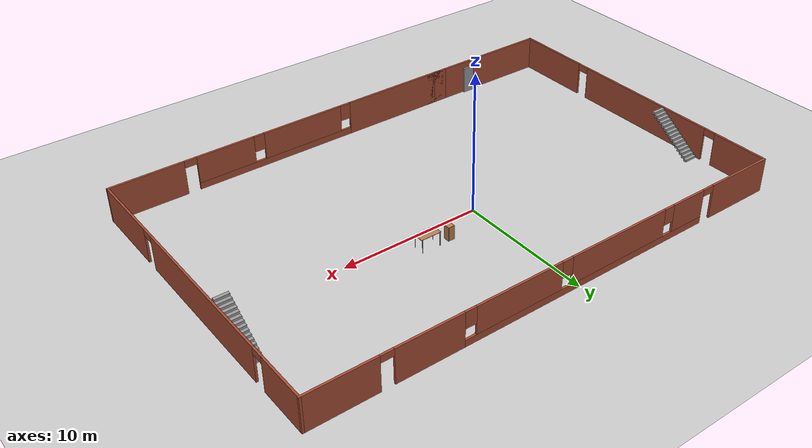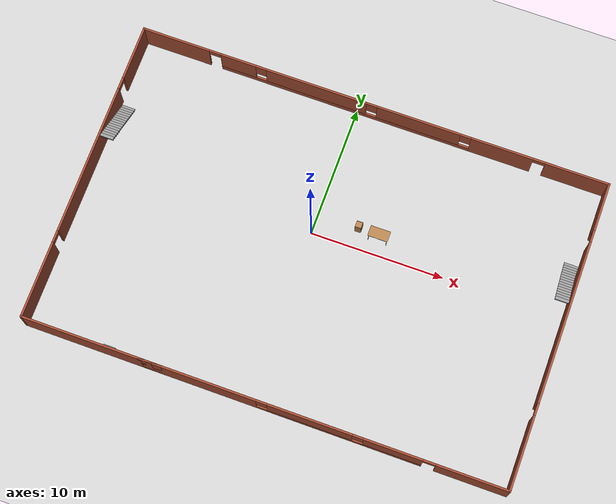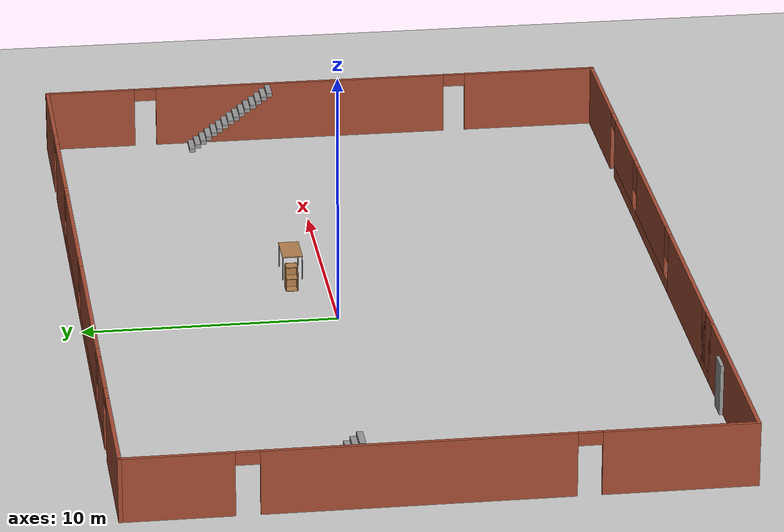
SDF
<sdf version="1.7">
 <world name="default">
  <light name="sun" type="directional">
   <pose>0 0 10 0 -0 0</pose>
   <diffuse>0.8 0.8 0.8 1</diffuse>
   <specular>0.2 0.2 0.2 1</specular>
   <attenuation>
    <range>1000</range>
    <constant>0.9</constant>
    <linear>0.01</linear>
    <quadratic>0.001</quadratic>
   </attenuation>
   <direction>-0.5 0.1 -0.9</direction>
   <spot><inner_angle>0</inner_angle><outer_angle>0</outer_angle><falloff>0</falloff></spot>
  </light>
  <model name="ground_plane">
   <static>1</static>
   <link name="link">
    <collision name="collision">
     <geometry><plane><normal>0 0 1</normal><size>100 100</size></plane></geometry>
     <surface><friction><ode><mu>100</mu><mu2>50</mu2></ode></friction></surface>
    </collision>
    <visual name="visual">
     <cast_shadows>0</cast_shadows>
     <geometry><plane><normal>0 0 1</normal><size>100 100</size></plane></geometry>
     <material>
      <script><uri>file://media/materials/scripts/gazebo.material</uri><name>Gazebo/Grey</name></script>
     </material>
    </visual>
   </link>
  </model>
  <gravity>0 0 -9.8</gravity>
  <magnetic_field>6e-06 2.3e-05 -4.2e-05</magnetic_field>
  <atmosphere type="adiabatic"/>
  <physics type="ode">
   <max_step_size>0.001</max_step_size>
   <real_time_factor>1</real_time_factor>
   <real_time_update_rate>1000</real_time_update_rate>
  </physics>
  <scene><ambient>0.4 0.4 0.4 1</ambient><background>0.7 0.7 0.7 1</background><shadows>1</shadows></scene>
  <spherical_coordinates>
   <surface_model>EARTH_WGS84</surface_model>
   <latitude_deg>0</latitude_deg>
   <longitude_deg>0</longitude_deg>
   <elevation>0</elevation>
   <heading_deg>0</heading_deg>
  </spherical_coordinates>
  <model name="test1">
   <pose>1.17776 -1.65796 0 0 -0 0</pose>
   <link name="Door_0">
    <collision name="Door_0_Collision">
     <geometry><box><size>0.9 0.17 2</size></box></geometry>
     <pose>0 0 1 0 -0 0</pose>
    </collision>
    <visual name="Door_0_Visual">
     <pose>0 0 1 0 -0 0</pose>
     <geometry><box><size>0.9 0.17 2</size></box></geometry>
     <material>
      <script><uri>file://media/materials/scripts/gazebo.material</uri><name>Gazebo/Grey</name></script>
     </material>
    </visual>
    <pose>-11.3262 -11.4203 0 0 -0 0</pose>
   </link>
   <link name="Stairs_1">
    <visual name="Stairs_1_Visual_0">
     <pose>17.1535 5.5921 0.083333 0 -0 0</pose>
     <geometry><box><size>1 0.233333 0.166667</size></box></geometry>
     <material>
      <script><uri>file://media/materials/scripts/gazebo.material</uri><name>Gazebo/Grey</name></script>
      <ambient>1 1 1 1</ambient>
     </material>
     <meta><layer>0</layer></meta>
    </visual>
    <collision name="Stairs_1_Collision_0">
     <geometry><box><size>1 0.233333 0.166667</size></box></geometry>
     <pose>17.1535 5.5921 0.083333 0 -0 0</pose>
    </collision>
    <visual name="Stairs_1_Visual_1">
     <pose>17.1535 5.35877 0.25 0 -0 0</pose>
     <geometry><box><size>1 0.233333 0.166667</size></box></geometry>
     <material>
      <script><uri>file://media/materials/scripts/gazebo.material</uri><name>Gazebo/Grey</name></script>
      <ambient>1 1 1 1</ambient>
     </material>
     <meta><layer>0</layer></meta>
    </visual>
    <collision name="Stairs_1_Collision_1">
     <geometry><box><size>1 0.233333 0.166667</size></box></geometry>
     <pose>17.1535 5.35877 0.25 0 -0 0</pose>
    </collision>
    <visual name="Stairs_1_Visual_2">
     <pose>17.1535 5.12543 0.416667 0 -0 0</pose>
     <geometry><box><size>1 0.233333 0.166667</size></box></geometry>
     <material>
      <script><uri>file://media/materials/scripts/gazebo.material</uri><name>Gazebo/Grey</name></script>
      <ambient>1 1 1 1</ambient>
     </material>
     <meta><layer>0</layer></meta>
    </visual>
    <collision name="Stairs_1_Collision_2">
     <geometry><box><size>1 0.233333 0.166667</size></box></geometry>
     <pose>17.1535 5.12543 0.416667 0 -0 0</pose>
    </collision>
    <visual name="Stairs_1_Visual_3">
     <pose>17.1535 4.8921 0.583333 0 -0 0</pose>
     <geometry><box><size>1 0.233333 0.166667</size></box></geometry>
     <material>
      <script><uri>file://media/materials/scripts/gazebo.material</uri><name>Gazebo/Grey</name></script>
      <ambient>1 1 1 1</ambient>
     </material>
     <meta><layer>0</layer></meta>
    </visual>
    <collision name="Stairs_1_Collision_3">
     <geometry><box><size>1 0.233333 0.166667</size></box></geometry>
     <pose>17.1535 4.8921 0.583333 0 -0 0</pose>
    </collision>
    <visual name="Stairs_1_Visual_4">
     <pose>17.1535 4.65877 0.75 0 -0 0</pose>
     <geometry><box><size>1 0.233333 0.166667</size></box></geometry>
     <material>
      <script><uri>file://media/materials/scripts/gazebo.material</uri><name>Gazebo/Grey</name></script>
      <ambient>1 1 1 1</ambient>
     </material>
     <meta><layer>0</layer></meta>
    </visual>
    <collision name="Stairs_1_Collision_4">
     <geometry><box><size>1 0.233333 0.166667</size></box></geometry>
     <pose>17.1535 4.65877 0.75 0 -0 0</pose>
    </collision>
    <visual name="Stairs_1_Visual_5">
     <pose>17.1535 4.42543 0.916667 0 -0 0</pose>
     <geometry><box><size>1 0.233333 0.166667</size></box></geometry>
     <material>
      <script><uri>file://media/materials/scripts/gazebo.material</uri><name>Gazebo/Grey</name></script>
      <ambient>1 1 1 1</ambient>
     </material>
     <meta><layer>0</layer></meta>
    </visual>
    <collision name="Stairs_1_Collision_5">
     <geometry><box><size>1 0.233333 0.166667</size></box></geometry>
     <pose>17.1535 4.42543 0.916667 0 -0 0</pose>
    </collision>
    <visual name="Stairs_1_Visual_6">
     <pose>17.1535 4.1921 1.08333 0 -0 0</pose>
     <geometry><box><size>1 0.233333 0.166667</size></box></geometry>
     <material>
      <script><uri>file://media/materials/scripts/gazebo.material</uri><name>Gazebo/Grey</name></script>
      <ambient>1 1 1 1</ambient>
     </material>
     <meta><layer>0</layer></meta>
    </visual>
    <collision name="Stairs_1_Collision_6">
     <geometry><box><size>1 0.233333 0.166667</size></box></geometry>
     <pose>17.1535 4.1921 1.08333 0 -0 0</pose>
    </collision>
    <visual name="Stairs_1_Visual_7">
     <pose>17.1535 3.95877 1.25 0 -0 0</pose>
     <geometry><box><size>1 0.233333 0.166667</size></box></geometry>
     <material>
      <script><uri>file://media/materials/scripts/gazebo.material</uri><name>Gazebo/Grey</name></script>
      <ambient>1 1 1 1</ambient>
     </material>
     <meta><layer>0</layer></meta>
    </visual>
    <collision name="Stairs_1_Collision_7">
     <geometry><box><size>1 0.233333 0.166667</size></box></geometry>
     <pose>17.1535 3.95877 1.25 0 -0 0</pose>
    </collision>
    <visual name="Stairs_1_Visual_8">
     <pose>17.1535 3.72543 1.41667 0 -0 0</pose>
     <geometry><box><size>1 0.233333 0.166667</size></box></geometry>
     <material>
      <script><uri>file://media/materials/scripts/gazebo.material</uri><name>Gazebo/Grey</name></script>
      <ambient>1 1 1 1</ambient>
     </material>
     <meta><layer>0</layer></meta>
    </visual>
    <collision name="Stairs_1_Collision_8">
     <geometry><box><size>1 0.233333 0.166667</size></box></geometry>
     <pose>17.1535 3.72543 1.41667 0 -0 0</pose>
    </collision>
    <visual name="Stairs_1_Visual_9">
     <pose>17.1535 3.4921 1.58333 0 -0 0</pose>
     <geometry><box><size>1 0.233333 0.166667</size></box></geometry>
     <material>
      <script><uri>file://media/materials/scripts/gazebo.material</uri><name>Gazebo/Grey</name></script>
      <ambient>1 1 1 1</ambient>
     </material>
     <meta><layer>0</layer></meta>
    </visual>
    <collision name="Stairs_1_Collision_9">
     <geometry><box><size>1 0.233333 0.166667</size></box></geometry>
     <pose>17.1535 3.4921 1.58333 0 -0 0</pose>
    </collision>
    <visual name="Stairs_1_Visual_10">
     <pose>17.1535 3.25877 1.75 0 -0 0</pose>
     <geometry><box><size>1 0.233333 0.166667</size></box></geometry>
     <material>
      <script><uri>file://media/materials/scripts/gazebo.material</uri><name>Gazebo/Grey</name></script>
      <ambient>1 1 1 1</ambient>
     </material>
     <meta><layer>0</layer></meta>
    </visual>
    <collision name="Stairs_1_Collision_10">
     <geometry><box><size>1 0.233333 0.166667</size></box></geometry>
     <pose>17.1535 3.25877 1.75 0 -0 0</pose>
    </collision>
    <visual name="Stairs_1_Visual_11">
     <pose>17.1535 3.02543 1.91667 0 -0 0</pose>
     <geometry><box><size>1 0.233333 0.166667</size></box></geometry>
     <material>
      <script><uri>file://media/materials/scripts/gazebo.material</uri><name>Gazebo/Grey</name></script>
      <ambient>1 1 1 1</ambient>
     </material>
     <meta><layer>0</layer></meta>
    </visual>
    <collision name="Stairs_1_Collision_11">
     <geometry><box><size>1 0.233333 0.166667</size></box></geometry>
     <pose>17.1535 3.02543 1.91667 0 -0 0</pose>
    </collision>
    <visual name="Stairs_1_Visual_12">
     <pose>17.1535 2.7921 2.08333 0 -0 0</pose>
     <geometry><box><size>1 0.233333 0.166667</size></box></geometry>
     <material>
      <script><uri>file://media/materials/scripts/gazebo.material</uri><name>Gazebo/Grey</name></script>
      <ambient>1 1 1 1</ambient>
     </material>
     <meta><layer>0</layer></meta>
    </visual>
    <collision name="Stairs_1_Collision_12">
     <geometry><box><size>1 0.233333 0.166667</size></box></geometry>
     <pose>17.1535 2.7921 2.08333 0 -0 0</pose>
    </collision>
    <visual name="Stairs_1_Visual_13">
     <pose>17.1535 2.55877 2.25 0 -0 0</pose>
     <geometry><box><size>1 0.233333 0.166667</size></box></geometry>
     <material>
      <script><uri>file://media/materials/scripts/gazebo.material</uri><name>Gazebo/Grey</name></script>
      <ambient>1 1 1 1</ambient>
     </material>
     <meta><layer>0</layer></meta>
    </visual>
    <collision name="Stairs_1_Collision_13">
     <geometry><box><size>1 0.233333 0.166667</size></box></geometry>
     <pose>17.1535 2.55877 2.25 0 -0 0</pose>
    </collision>
    <visual name="Stairs_1_Visual_14">
     <pose>17.1535 2.32543 2.41667 0 -0 0</pose>
     <geometry><box><size>1 0.233333 0.166667</size></box></geometry>
     <material>
      <script><uri>file://media/materials/scripts/gazebo.material</uri><name>Gazebo/Grey</name></script>
      <ambient>1 1 1 1</ambient>
     </material>
     <meta><layer>0</layer></meta>
    </visual>
    <collision name="Stairs_1_Collision_14">
     <geometry><box><size>1 0.233333 0.166667</size></box></geometry>
     <pose>17.1535 2.32543 2.41667 0 -0 0</pose>
    </collision>
   </link>
   <link name="Stairs_2">
    <visual name="Stairs_2_Visual_0">
     <pose>-17.1849 6.08032 0.083333 0 -0 0</pose>
     <geometry><box><size>1 0.233333 0.166667</size></box></geometry>
     <material>
      <script><uri>file://media/materials/scripts/gazebo.material</uri><name>Gazebo/Grey</name></script>
      <ambient>1 1 1 1</ambient>
     </material>
     <meta><layer>0</layer></meta>
    </visual>
    <collision name="Stairs_2_Collision_0">
     <geometry><box><size>1 0.233333 0.166667</size></box></geometry>
     <pose>-17.1849 6.08032 0.083333 0 -0 0</pose>
    </collision>
    <visual name="Stairs_2_Visual_1">
     <pose>-17.1849 5.84699 0.25 0 -0 0</pose>
     <geometry><box><size>1 0.233333 0.166667</size></box></geometry>
     <material>
      <script><uri>file://media/materials/scripts/gazebo.material</uri><name>Gazebo/Grey</name></script>
      <ambient>1 1 1 1</ambient>
     </material>
     <meta><layer>0</layer></meta>
    </visual>
    <collision name="Stairs_2_Collision_1">
     <geometry><box><size>1 0.233333 0.166667</size></box></geometry>
     <pose>-17.1849 5.84699 0.25 0 -0 0</pose>
    </collision>
    <visual name="Stairs_2_Visual_2">
     <pose>-17.1849 5.61366 0.416667 0 -0 0</pose>
     <geometry><box><size>1 0.233333 0.166667</size></box></geometry>
     <material>
      <script><uri>file://media/materials/scripts/gazebo.material</uri><name>Gazebo/Grey</name></script>
      <ambient>1 1 1 1</ambient>
     </material>
     <meta><layer>0</layer></meta>
    </visual>
    <collision name="Stairs_2_Collision_2">
     <geometry><box><size>1 0.233333 0.166667</size></box></geometry>
     <pose>-17.1849 5.61366 0.416667 0 -0 0</pose>
    </collision>
    <visual name="Stairs_2_Visual_3">
     <pose>-17.1849 5.38032 0.583333 0 -0 0</pose>
     <geometry><box><size>1 0.233333 0.166667</size></box></geometry>
     <material>
      <script><uri>file://media/materials/scripts/gazebo.material</uri><name>Gazebo/Grey</name></script>
      <ambient>1 1 1 1</ambient>
     </material>
     <meta><layer>0</layer></meta>
    </visual>
    <collision name="Stairs_2_Collision_3">
     <geometry><box><size>1 0.233333 0.166667</size></box></geometry>
     <pose>-17.1849 5.38032 0.583333 0 -0 0</pose>
    </collision>
    <visual name="Stairs_2_Visual_4">
     <pose>-17.1849 5.14699 0.75 0 -0 0</pose>
     <geometry><box><size>1 0.233333 0.166667</size></box></geometry>
     <material>
      <script><uri>file://media/materials/scripts/gazebo.material</uri><name>Gazebo/Grey</name></script>
      <ambient>1 1 1 1</ambient>
     </material>
     <meta><layer>0</layer></meta>
    </visual>
    <collision name="Stairs_2_Collision_4">
     <geometry><box><size>1 0.233333 0.166667</size></box></geometry>
     <pose>-17.1849 5.14699 0.75 0 -0 0</pose>
    </collision>
    <visual name="Stairs_2_Visual_5">
     <pose>-17.1849 4.91366 0.916667 0 -0 0</pose>
     <geometry><box><size>1 0.233333 0.166667</size></box></geometry>
     <material>
      <script><uri>file://media/materials/scripts/gazebo.material</uri><name>Gazebo/Grey</name></script>
      <ambient>1 1 1 1</ambient>
     </material>
     <meta><layer>0</layer></meta>
    </visual>
    <collision name="Stairs_2_Collision_5">
     <geometry><box><size>1 0.233333 0.166667</size></box></geometry>
     <pose>-17.1849 4.91366 0.916667 0 -0 0</pose>
    </collision>
    <visual name="Stairs_2_Visual_6">
     <pose>-17.1849 4.68032 1.08333 0 -0 0</pose>
     <geometry><box><size>1 0.233333 0.166667</size></box></geometry>
     <material>
      <script><uri>file://media/materials/scripts/gazebo.material</uri><name>Gazebo/Grey</name></script>
      <ambient>1 1 1 1</ambient>
     </material>
     <meta><layer>0</layer></meta>
    </visual>
    <collision name="Stairs_2_Collision_6">
     <geometry><box><size>1 0.233333 0.166667</size></box></geometry>
     <pose>-17.1849 4.68032 1.08333 0 -0 0</pose>
    </collision>
    <visual name="Stairs_2_Visual_7">
     <pose>-17.1849 4.44699 1.25 0 -0 0</pose>
     <geometry><box><size>1 0.233333 0.166667</size></box></geometry>
     <material>
      <script><uri>file://media/materials/scripts/gazebo.material</uri><name>Gazebo/Grey</name></script>
      <ambient>1 1 1 1</ambient>
     </material>
     <meta><layer>0</layer></meta>
    </visual>
    <collision name="Stairs_2_Collision_7">
     <geometry><box><size>1 0.233333 0.166667</size></box></geometry>
     <pose>-17.1849 4.44699 1.25 0 -0 0</pose>
    </collision>
    <visual name="Stairs_2_Visual_8">
     <pose>-17.1849 4.21366 1.41667 0 -0 0</pose>
     <geometry><box><size>1 0.233333 0.166667</size></box></geometry>
     <material>
      <script><uri>file://media/materials/scripts/gazebo.material</uri><name>Gazebo/Grey</name></script>
      <ambient>1 1 1 1</ambient>
     </material>
     <meta><layer>0</layer></meta>
    </visual>
    <collision name="Stairs_2_Collision_8">
     <geometry><box><size>1 0.233333 0.166667</size></box></geometry>
     <pose>-17.1849 4.21366 1.41667 0 -0 0</pose>
    </collision>
    <visual name="Stairs_2_Visual_9">
     <pose>-17.1849 3.98032 1.58333 0 -0 0</pose>
     <geometry><box><size>1 0.233333 0.166667</size></box></geometry>
     <material>
      <script><uri>file://media/materials/scripts/gazebo.material</uri><name>Gazebo/Grey</name></script>
      <ambient>1 1 1 1</ambient>
     </material>
     <meta><layer>0</layer></meta>
    </visual>
    <collision name="Stairs_2_Collision_9">
     <geometry><box><size>1 0.233333 0.166667</size></box></geometry>
     <pose>-17.1849 3.98032 1.58333 0 -0 0</pose>
    </collision>
    <visual name="Stairs_2_Visual_10">
     <pose>-17.1849 3.74699 1.75 0 -0 0</pose>
     <geometry><box><size>1 0.233333 0.166667</size></box></geometry>
     <material>
      <script><uri>file://media/materials/scripts/gazebo.material</uri><name>Gazebo/Grey</name></script>
      <ambient>1 1 1 1</ambient>
     </material>
     <meta><layer>0</layer></meta>
    </visual>
    <collision name="Stairs_2_Collision_10">
     <geometry><box><size>1 0.233333 0.166667</size></box></geometry>
     <pose>-17.1849 3.74699 1.75 0 -0 0</pose>
    </collision>
    <visual name="Stairs_2_Visual_11">
     <pose>-17.1849 3.51366 1.91667 0 -0 0</pose>
     <geometry><box><size>1 0.233333 0.166667</size></box></geometry>
     <material>
      <script><uri>file://media/materials/scripts/gazebo.material</uri><name>Gazebo/Grey</name></script>
      <ambient>1 1 1 1</ambient>
     </material>
     <meta><layer>0</layer></meta>
    </visual>
    <collision name="Stairs_2_Collision_11">
     <geometry><box><size>1 0.233333 0.166667</size></box></geometry>
     <pose>-17.1849 3.51366 1.91667 0 -0 0</pose>
    </collision>
    <visual name="Stairs_2_Visual_12">
     <pose>-17.1849 3.28032 2.08333 0 -0 0</pose>
     <geometry><box><size>1 0.233333 0.166667</size></box></geometry>
     <material>
      <script><uri>file://media/materials/scripts/gazebo.material</uri><name>Gazebo/Grey</name></script>
      <ambient>1 1 1 1</ambient>
     </material>
     <meta><layer>0</layer></meta>
    </visual>
    <collision name="Stairs_2_Collision_12">
     <geometry><box><size>1 0.233333 0.166667</size></box></geometry>
     <pose>-17.1849 3.28032 2.08333 0 -0 0</pose>
    </collision>
    <visual name="Stairs_2_Visual_13">
     <pose>-17.1849 3.04699 2.25 0 -0 0</pose>
     <geometry><box><size>1 0.233333 0.166667</size></box></geometry>
     <material>
      <script><uri>file://media/materials/scripts/gazebo.material</uri><name>Gazebo/Grey</name></script>
      <ambient>1 1 1 1</ambient>
     </material>
     <meta><layer>0</layer></meta>
    </visual>
    <collision name="Stairs_2_Collision_13">
     <geometry><box><size>1 0.233333 0.166667</size></box></geometry>
     <pose>-17.1849 3.04699 2.25 0 -0 0</pose>
    </collision>
    <visual name="Stairs_2_Visual_14">
     <pose>-17.1849 2.81366 2.41667 0 -0 0</pose>
     <geometry><box><size>1 0.233333 0.166667</size></box></geometry>
     <material>
      <script><uri>file://media/materials/scripts/gazebo.material</uri><name>Gazebo/Grey</name></script>
      <ambient>1 1 1 1</ambient>
     </material>
     <meta><layer>0</layer></meta>
    </visual>
    <collision name="Stairs_2_Collision_14">
     <geometry><box><size>1 0.233333 0.166667</size></box></geometry>
     <pose>-17.1849 2.81366 2.41667 0 -0 0</pose>
    </collision>
   </link>
   <link name="Wall_1">
    <pose>4.37794 -11.55 0 0 -0 0</pose>
    <visual name="Wall_1_Visual_0">
     <pose>-9.14683 0 1.25 0 -0 0</pose>
     <geometry><box><size>8.70634 0.15 2.5</size></box></geometry>
     <material>
      <script><uri>file://media/materials/scripts/gazebo.material</uri><name>Gazebo/Bricks</name></script>
      <ambient>1 1 1 1</ambient>
     </material>
     <meta><layer>0</layer></meta>
    </visual>
    <collision name="Wall_1_Collision_0">
     <geometry><box><size>8.70634 0.15 2.5</size></box></geometry>
     <pose>-9.14683 0 1.25 0 -0 0</pose>
    </collision>
    <visual name="Wall_1_Visual_1">
     <pose>10.8403 0 1.25 0 -0 0</pose>
     <geometry><box><size>5.31944 0.15 2.5</size></box></geometry>
     <material>
      <script><uri>file://media/materials/scripts/gazebo.material</uri><name>Gazebo/Bricks</name></script>
      <ambient>1 1 1 1</ambient>
     </material>
     <meta><layer>0</layer></meta>
    </visual>
    <collision name="Wall_1_Collision_1">
     <geometry><box><size>5.31944 0.15 2.5</size></box></geometry>
     <pose>10.8403 0 1.25 0 -0 0</pose>
    </collision>
    <visual name="Wall_1_Visual_2">
     <pose>1.24345 0 0.25 0 -0 0</pose>
     <geometry><box><size>12.0742 0.15 0.5</size></box></geometry>
     <material>
      <script><uri>file://media/materials/scripts/gazebo.material</uri><name>Gazebo/Bricks</name></script>
      <ambient>1 1 1 1</ambient>
     </material>
     <meta><layer>0</layer></meta>
    </visual>
    <collision name="Wall_1_Collision_2">
     <geometry><box><size>12.0742 0.15 0.5</size></box></geometry>
     <pose>1.24345 0 0.25 0 -0 0</pose>
    </collision>
    <visual name="Wall_1_Visual_3">
     <pose>-0.894723 0 1.5 0 -0 0</pose>
     <geometry><box><size>6.19787 0.15 2</size></box></geometry>
     <material>
      <script><uri>file://media/materials/scripts/gazebo.material</uri><name>Gazebo/Bricks</name></script>
      <ambient>1 1 1 1</ambient>
     </material>
     <meta><layer>0</layer></meta>
    </visual>
    <collision name="Wall_1_Collision_3">
     <geometry><box><size>6.19787 0.15 2</size></box></geometry>
     <pose>-0.894723 0 1.5 0 -0 0</pose>
    </collision>
    <visual name="Wall_1_Visual_4">
     <pose>5.14239 0 1.5 0 -0 0</pose>
     <geometry><box><size>4.27635 0.15 2</size></box></geometry>
     <material>
      <script><uri>file://media/materials/scripts/gazebo.material</uri><name>Gazebo/Bricks</name></script>
      <ambient>1 1 1 1</ambient>
     </material>
     <meta><layer>0</layer></meta>
    </visual>
    <collision name="Wall_1_Collision_4">
     <geometry><box><size>4.27635 0.15 2</size></box></geometry>
     <pose>5.14239 0 1.5 0 -0 0</pose>
    </collision>
    <visual name="Wall_1_Visual_5">
     <pose>-4.39366 0 1.9 0 -0 0</pose>
     <geometry><box><size>0.8 0.15 1.2</size></box></geometry>
     <material>
      <script><uri>file://media/materials/scripts/gazebo.material</uri><name>Gazebo/Bricks</name></script>
      <ambient>1 1 1 1</ambient>
     </material>
     <meta><layer>0</layer></meta>
    </visual>
    <collision name="Wall_1_Collision_5">
     <geometry><box><size>0.8 0.15 1.2</size></box></geometry>
     <pose>-4.39366 0 1.9 0 -0 0</pose>
    </collision>
    <visual name="Wall_1_Visual_6">
     <pose>2.60421 0 1.9 0 -0 0</pose>
     <geometry><box><size>0.8 0.15 1.2</size></box></geometry>
     <material>
      <script><uri>file://media/materials/scripts/gazebo.material</uri><name>Gazebo/Bricks</name></script>
      <ambient>1 1 1 1</ambient>
     </material>
     <meta><layer>0</layer></meta>
    </visual>
    <collision name="Wall_1_Collision_6">
     <geometry><box><size>0.8 0.15 1.2</size></box></geometry>
     <pose>2.60421 0 1.9 0 -0 0</pose>
    </collision>
    <visual name="Wall_1_Visual_7">
     <pose>7.73056 0 2.25 0 -0 0</pose>
     <geometry><box><size>0.9 0.15 0.5</size></box></geometry>
     <material>
      <script><uri>file://media/materials/scripts/gazebo.material</uri><name>Gazebo/Bricks</name></script>
      <ambient>1 1 1 1</ambient>
     </material>
     <meta><layer>0</layer></meta>
    </visual>
    <collision name="Wall_1_Collision_7">
     <geometry><box><size>0.9 0.15 0.5</size></box></geometry>
     <pose>7.73056 0 2.25 0 -0 0</pose>
    </collision>
   </link>
   <link name="Wall_11">
    <pose>-17.8029 -0 0 0 -0 -1.5708</pose>
    <visual name="Wall_11_Visual_0">
     <pose>-9.52224 0 1.25 0 -0 0</pose>
     <geometry><box><size>4.20552 0.15 2.5</size></box></geometry>
     <material>
      <script><uri>file://media/materials/scripts/gazebo.material</uri><name>Gazebo/Bricks</name></script>
      <ambient>1 1 1 1</ambient>
     </material>
     <meta><layer>0</layer></meta>
    </visual>
    <collision name="Wall_11_Collision_0">
     <geometry><box><size>4.20552 0.15 2.5</size></box></geometry>
     <pose>-9.52224 0 1.25 0 -0 0</pose>
    </collision>
    <visual name="Wall_11_Visual_1">
     <pose>-0.785312 0 1.25 0 -0 0</pose>
     <geometry><box><size>11.4683 0.15 2.5</size></box></geometry>
     <material>
      <script><uri>file://media/materials/scripts/gazebo.material</uri><name>Gazebo/Bricks</name></script>
      <ambient>1 1 1 1</ambient>
     </material>
     <meta><layer>0</layer></meta>
    </visual>
    <collision name="Wall_11_Collision_1">
     <geometry><box><size>11.4683 0.15 2.5</size></box></geometry>
     <pose>-0.785312 0 1.25 0 -0 0</pose>
    </collision>
    <visual name="Wall_11_Visual_2">
     <pose>8.73693 0 1.25 0 -0 0</pose>
     <geometry><box><size>5.77614 0.15 2.5</size></box></geometry>
     <material>
      <script><uri>file://media/materials/scripts/gazebo.material</uri><name>Gazebo/Bricks</name></script>
      <ambient>1 1 1 1</ambient>
     </material>
     <meta><layer>0</layer></meta>
    </visual>
    <collision name="Wall_11_Collision_2">
     <geometry><box><size>5.77614 0.15 2.5</size></box></geometry>
     <pose>8.73693 0 1.25 0 -0 0</pose>
    </collision>
    <visual name="Wall_11_Visual_3">
     <pose>-6.96948 0 2.25 0 -0 0</pose>
     <geometry><box><size>0.9 0.15 0.5</size></box></geometry>
     <material>
      <script><uri>file://media/materials/scripts/gazebo.material</uri><name>Gazebo/Bricks</name></script>
      <ambient>1 1 1 1</ambient>
     </material>
     <meta><layer>0</layer></meta>
    </visual>
    <collision name="Wall_11_Collision_3">
     <geometry><box><size>0.9 0.15 0.5</size></box></geometry>
     <pose>-6.96948 0 2.25 0 -0 0</pose>
    </collision>
    <visual name="Wall_11_Visual_4">
     <pose>5.39886 0 2.25 0 -0 0</pose>
     <geometry><box><size>0.9 0.15 0.5</size></box></geometry>
     <material>
      <script><uri>file://media/materials/scripts/gazebo.material</uri><name>Gazebo/Bricks</name></script>
      <ambient>1 1 1 1</ambient>
     </material>
     <meta><layer>0</layer></meta>
    </visual>
    <collision name="Wall_11_Collision_4">
     <geometry><box><size>0.9 0.15 0.5</size></box></geometry>
     <pose>5.39886 0 2.25 0 -0 0</pose>
    </collision>
   </link>
   <link name="Wall_12">
    <pose>-12.6279 -11.55 0 0 -0 0</pose>
    <visual name="Wall_12_Visual_0">
     <pose>-0.750158 0 1.25 0 -0 0</pose>
     <geometry><box><size>8.99968 0.15 2.5</size></box></geometry>
     <material>
      <script><uri>file://media/materials/scripts/gazebo.material</uri><name>Gazebo/Bricks</name></script>
      <ambient>1 1 1 1</ambient>
     </material>
     <meta><layer>0</layer></meta>
    </visual>
    <collision name="Wall_12_Collision_0">
     <geometry><box><size>8.99968 0.15 2.5</size></box></geometry>
     <pose>-0.750158 0 1.25 0 -0 0</pose>
    </collision>
    <visual name="Wall_12_Visual_1">
     <pose>4.49984 0 0.25 0 -0 0</pose>
     <geometry><box><size>1.50032 0.15 0.5</size></box></geometry>
     <material>
      <script><uri>file://media/materials/scripts/gazebo.material</uri><name>Gazebo/Bricks</name></script>
      <ambient>1 1 1 1</ambient>
     </material>
     <meta><layer>0</layer></meta>
    </visual>
    <collision name="Wall_12_Collision_1">
     <geometry><box><size>1.50032 0.15 0.5</size></box></geometry>
     <pose>4.49984 0 0.25 0 -0 0</pose>
    </collision>
    <visual name="Wall_12_Visual_2">
     <pose>4.89984 0 1.5 0 -0 0</pose>
     <geometry><box><size>0.700315 0.15 2</size></box></geometry>
     <material>
      <script><uri>file://media/materials/scripts/gazebo.material</uri><name>Gazebo/Bricks</name></script>
      <ambient>1 1 1 1</ambient>
     </material>
     <meta><layer>0</layer></meta>
    </visual>
    <collision name="Wall_12_Collision_2">
     <geometry><box><size>0.700315 0.15 2</size></box></geometry>
     <pose>4.89984 0 1.5 0 -0 0</pose>
    </collision>
    <visual name="Wall_12_Visual_3">
     <pose>4.14968 0 1.9 0 -0 0</pose>
     <geometry><box><size>0.8 0.15 1.2</size></box></geometry>
     <material>
      <script><uri>file://media/materials/scripts/gazebo.material</uri><name>Gazebo/Bricks</name></script>
      <ambient>1 1 1 1</ambient>
     </material>
     <meta><layer>0</layer></meta>
    </visual>
    <collision name="Wall_12_Collision_3">
     <geometry><box><size>0.8 0.15 1.2</size></box></geometry>
     <pose>4.14968 0 1.9 0 -0 0</pose>
    </collision>
   </link>
   <link name="Wall_2">
    <pose>17.8029 -0 0 0 -0 1.5708</pose>
    <visual name="Wall_2_Visual_0">
     <pose>-8.85898 0 1.25 0 -0 0</pose>
     <geometry><box><size>5.53203 0.15 2.5</size></box></geometry>
     <material>
      <script><uri>file://media/materials/scripts/gazebo.material</uri><name>Gazebo/Bricks</name></script>
      <ambient>1 1 1 1</ambient>
     </material>
     <meta><layer>0</layer></meta>
    </visual>
    <collision name="Wall_2_Collision_0">
     <geometry><box><size>5.53203 0.15 2.5</size></box></geometry>
     <pose>-8.85898 0 1.25 0 -0 0</pose>
    </collision>
    <visual name="Wall_2_Visual_1">
     <pose>0.907368 0 1.25 0 -0 0</pose>
     <geometry><box><size>12.2007 0.15 2.5</size></box></geometry>
     <material>
      <script><uri>file://media/materials/scripts/gazebo.material</uri><name>Gazebo/Bricks</name></script>
      <ambient>1 1 1 1</ambient>
     </material>
     <meta><layer>0</layer></meta>
    </visual>
    <collision name="Wall_2_Collision_1">
     <geometry><box><size>12.2007 0.15 2.5</size></box></geometry>
     <pose>0.907368 0 1.25 0 -0 0</pose>
    </collision>
    <visual name="Wall_2_Visual_2">
     <pose>9.76635 0 1.25 0 -0 0</pose>
     <geometry><box><size>3.7173 0.15 2.5</size></box></geometry>
     <material>
      <script><uri>file://media/materials/scripts/gazebo.material</uri><name>Gazebo/Bricks</name></script>
      <ambient>1 1 1 1</ambient>
     </material>
     <meta><layer>0</layer></meta>
    </visual>
    <collision name="Wall_2_Collision_2">
     <geometry><box><size>3.7173 0.15 2.5</size></box></geometry>
     <pose>9.76635 0 1.25 0 -0 0</pose>
    </collision>
    <visual name="Wall_2_Visual_3">
     <pose>-5.64297 0 2.25 0 -0 0</pose>
     <geometry><box><size>0.9 0.15 0.5</size></box></geometry>
     <material>
      <script><uri>file://media/materials/scripts/gazebo.material</uri><name>Gazebo/Bricks</name></script>
      <ambient>1 1 1 1</ambient>
     </material>
     <meta><layer>0</layer></meta>
    </visual>
    <collision name="Wall_2_Collision_3">
     <geometry><box><size>0.9 0.15 0.5</size></box></geometry>
     <pose>-5.64297 0 2.25 0 -0 0</pose>
    </collision>
    <visual name="Wall_2_Visual_4">
     <pose>7.4577 0 2.25 0 -0 0</pose>
     <geometry><box><size>0.9 0.15 0.5</size></box></geometry>
     <material>
      <script><uri>file://media/materials/scripts/gazebo.material</uri><name>Gazebo/Bricks</name></script>
      <ambient>1 1 1 1</ambient>
     </material>
     <meta><layer>0</layer></meta>
    </visual>
    <collision name="Wall_2_Collision_4">
     <geometry><box><size>0.9 0.15 0.5</size></box></geometry>
     <pose>7.4577 0 2.25 0 -0 0</pose>
    </collision>
   </link>
   <link name="Wall_7">
    <pose>-1e-06 11.55 0 0 -0 3.14159</pose>
    <visual name="Wall_7_Visual_0">
     <pose>-15.4623 0 1.25 0 -0 0</pose>
     <geometry><box><size>4.83121 0.15 2.5</size></box></geometry>
     <material>
      <script><uri>file://media/materials/scripts/gazebo.material</uri><name>Gazebo/Bricks</name></script>
      <ambient>1 1 1 1</ambient>
     </material>
     <meta><layer>0</layer></meta>
    </visual>
    <collision name="Wall_7_Collision_0">
     <geometry><box><size>4.83121 0.15 2.5</size></box></geometry>
     <pose>-15.4623 0 1.25 0 -0 0</pose>
    </collision>
    <visual name="Wall_7_Visual_1">
     <pose>-9.80513 0 1.25 0 -0 0</pose>
     <geometry><box><size>4.6832 0.15 2.5</size></box></geometry>
     <material>
      <script><uri>file://media/materials/scripts/gazebo.material</uri><name>Gazebo/Bricks</name></script>
      <ambient>1 1 1 1</ambient>
     </material>
     <meta><layer>0</layer></meta>
    </visual>
    <collision name="Wall_7_Collision_1">
     <geometry><box><size>4.6832 0.15 2.5</size></box></geometry>
     <pose>-9.80513 0 1.25 0 -0 0</pose>
    </collision>
    <visual name="Wall_7_Visual_2">
     <pose>15.2746 0 1.25 0 -0 0</pose>
     <geometry><box><size>5.20664 0.15 2.5</size></box></geometry>
     <material>
      <script><uri>file://media/materials/scripts/gazebo.material</uri><name>Gazebo/Bricks</name></script>
      <ambient>1 1 1 1</ambient>
     </material>
     <meta><layer>0</layer></meta>
    </visual>
    <collision name="Wall_7_Collision_2">
     <geometry><box><size>5.20664 0.15 2.5</size></box></geometry>
     <pose>15.2746 0 1.25 0 -0 0</pose>
    </collision>
    <visual name="Wall_7_Visual_3">
     <pose>2.15389 0 0.25 0 -0 0</pose>
     <geometry><box><size>19.2348 0.15 0.5</size></box></geometry>
     <material>
      <script><uri>file://media/materials/scripts/gazebo.material</uri><name>Gazebo/Bricks</name></script>
      <ambient>1 1 1 1</ambient>
     </material>
     <meta><layer>0</layer></meta>
    </visual>
    <collision name="Wall_7_Collision_3">
     <geometry><box><size>19.2348 0.15 0.5</size></box></geometry>
     <pose>2.15389 0 0.25 0 -0 0</pose>
    </collision>
    <visual name="Wall_7_Visual_4">
     <pose>-3.48322 0 1.5 0 -0 0</pose>
     <geometry><box><size>6.36061 0.15 2</size></box></geometry>
     <material>
      <script><uri>file://media/materials/scripts/gazebo.material</uri><name>Gazebo/Bricks</name></script>
      <ambient>1 1 1 1</ambient>
     </material>
     <meta><layer>0</layer></meta>
    </visual>
    <collision name="Wall_7_Collision_4">
     <geometry><box><size>6.36061 0.15 2</size></box></geometry>
     <pose>-3.48322 0 1.5 0 -0 0</pose>
    </collision>
    <visual name="Wall_7_Visual_5">
     <pose>4.36904 0 1.5 0 -0 0</pose>
     <geometry><box><size>7.74392 0.15 2</size></box></geometry>
     <material>
      <script><uri>file://media/materials/scripts/gazebo.material</uri><name>Gazebo/Bricks</name></script>
      <ambient>1 1 1 1</ambient>
     </material>
     <meta><layer>0</layer></meta>
    </visual>
    <collision name="Wall_7_Collision_5">
     <geometry><box><size>7.74392 0.15 2</size></box></geometry>
     <pose>4.36904 0 1.5 0 -0 0</pose>
    </collision>
    <visual name="Wall_7_Visual_6">
     <pose>10.4062 0 1.5 0 -0 0</pose>
     <geometry><box><size>2.73031 0.15 2</size></box></geometry>
     <material>
      <script><uri>file://media/materials/scripts/gazebo.material</uri><name>Gazebo/Bricks</name></script>
      <ambient>1 1 1 1</ambient>
     </material>
     <meta><layer>0</layer></meta>
    </visual>
    <collision name="Wall_7_Collision_6">
     <geometry><box><size>2.73031 0.15 2</size></box></geometry>
     <pose>10.4062 0 1.5 0 -0 0</pose>
    </collision>
    <visual name="Wall_7_Visual_7">
     <pose>-7.06353 0 1.9 0 -0 0</pose>
     <geometry><box><size>0.8 0.15 1.2</size></box></geometry>
     <material>
      <script><uri>file://media/materials/scripts/gazebo.material</uri><name>Gazebo/Bricks</name></script>
      <ambient>1 1 1 1</ambient>
     </material>
     <meta><layer>0</layer></meta>
    </visual>
    <collision name="Wall_7_Collision_7">
     <geometry><box><size>0.8 0.15 1.2</size></box></geometry>
     <pose>-7.06353 0 1.9 0 -0 0</pose>
    </collision>
    <visual name="Wall_7_Visual_8">
     <pose>0.097086 0 1.9 0 -0 0</pose>
     <geometry><box><size>0.8 0.15 1.2</size></box></geometry>
     <material>
      <script><uri>file://media/materials/scripts/gazebo.material</uri><name>Gazebo/Bricks</name></script>
      <ambient>1 1 1 1</ambient>
     </material>
     <meta><layer>0</layer></meta>
    </visual>
    <collision name="Wall_7_Collision_8">
     <geometry><box><size>0.8 0.15 1.2</size></box></geometry>
     <pose>0.097086 0 1.9 0 -0 0</pose>
    </collision>
    <visual name="Wall_7_Visual_9">
     <pose>8.641 0 1.9 0 -0 0</pose>
     <geometry><box><size>0.8 0.15 1.2</size></box></geometry>
     <material>
      <script><uri>file://media/materials/scripts/gazebo.material</uri><name>Gazebo/Bricks</name></script>
      <ambient>1 1 1 1</ambient>
     </material>
     <meta><layer>0</layer></meta>
    </visual>
    <collision name="Wall_7_Collision_9">
     <geometry><box><size>0.8 0.15 1.2</size></box></geometry>
     <pose>8.641 0 1.9 0 -0 0</pose>
    </collision>
    <visual name="Wall_7_Visual_10">
     <pose>-12.5967 0 2.25 0 -0 0</pose>
     <geometry><box><size>0.9 0.15 0.5</size></box></geometry>
     <material>
      <script><uri>file://media/materials/scripts/gazebo.material</uri><name>Gazebo/Bricks</name></script>
      <ambient>1 1 1 1</ambient>
     </material>
     <meta><layer>0</layer></meta>
    </visual>
    <collision name="Wall_7_Collision_10">
     <geometry><box><size>0.9 0.15 0.5</size></box></geometry>
     <pose>-12.5967 0 2.25 0 -0 0</pose>
    </collision>
    <visual name="Wall_7_Visual_11">
     <pose>12.2213 0 2.25 0 -0 0</pose>
     <geometry><box><size>0.9 0.15 0.5</size></box></geometry>
     <material>
      <script><uri>file://media/materials/scripts/gazebo.material</uri><name>Gazebo/Bricks</name></script>
      <ambient>1 1 1 1</ambient>
     </material>
     <meta><layer>0</layer></meta>
    </visual>
    <collision name="Wall_7_Collision_11">
     <geometry><box><size>0.9 0.15 0.5</size></box></geometry>
     <pose>12.2213 0 2.25 0 -0 0</pose>
    </collision>
   </link>
   <static>1</static>
  </model>
  <model name="table">
   <static>1</static>
   <link name="link">
    <collision name="surface">
     <pose>0 0 1 0 -0 0</pose>
     <geometry><box><size>1.5 0.8 0.03</size></box></geometry>
     <surface><friction><ode><mu>0.6</mu><mu2>0.6</mu2></ode></friction></surface>
    </collision>
    <visual name="visual1">
     <pose>0 0 1 0 -0 0</pose>
     <geometry><box><size>1.5 0.8 0.03</size></box></geometry>
     <material>
      <script><uri>file://media/materials/scripts/gazebo.material</uri><name>Gazebo/Wood</name></script>
     </material>
    </visual>
    <collision name="front_left_leg">
     <pose>0.68 0.38 0.5 0 -0 0</pose>
     <geometry><cylinder><radius>0.02</radius><length>1</length></cylinder></geometry>
    </collision>
    <visual name="front_left_leg">
     <pose>0.68 0.38 0.5 0 -0 0</pose>
     <geometry><cylinder><radius>0.02</radius><length>1</length></cylinder></geometry>
     <material>
      <script><uri>file://media/materials/scripts/gazebo.material</uri><name>Gazebo/Grey</name></script>
     </material>
    </visual>
    <collision name="front_right_leg">
     <pose>0.68 -0.38 0.5 0 -0 0</pose>
     <geometry><cylinder><radius>0.02</radius><length>1</length></cylinder></geometry>
    </collision>
    <visual name="front_right_leg">
     <pose>0.68 -0.38 0.5 0 -0 0</pose>
     <geometry><cylinder><radius>0.02</radius><length>1</length></cylinder></geometry>
     <material>
      <script><uri>file://media/materials/scripts/gazebo.material</uri><name>Gazebo/Grey</name></script>
     </material>
    </visual>
    <collision name="back_right_leg">
     <pose>-0.68 -0.38 0.5 0 -0 0</pose>
     <geometry><cylinder><radius>0.02</radius><length>1</length></cylinder></geometry>
    </collision>
    <visual name="back_right_leg">
     <pose>-0.68 -0.38 0.5 0 -0 0</pose>
     <geometry><cylinder><radius>0.02</radius><length>1</length></cylinder></geometry>
     <material>
      <script><uri>file://media/materials/scripts/gazebo.material</uri><name>Gazebo/Grey</name></script>
     </material>
    </visual>
    <collision name="back_left_leg">
     <pose>-0.68 0.38 0.5 0 -0 0</pose>
     <geometry><cylinder><radius>0.02</radius><length>1</length></cylinder></geometry>
    </collision>
    <visual name="back_left_leg">
     <pose>-0.68 0.38 0.5 0 -0 0</pose>
     <geometry><cylinder><radius>0.02</radius><length>1</length></cylinder></geometry>
     <material>
      <script><uri>file://media/materials/scripts/gazebo.material</uri><name>Gazebo/Grey</name></script>
     </material>
    </visual>
   </link>
   <pose>4.68605 1.31662 0 0 -0 0</pose>
  </model>
  <model name="cabinet">
   <static>1</static>
   <link name="cabinet_bottom_plate">
    <inertial>
     <pose>0 0 -1 0 -0 0</pose>
     <inertia><ixx>2.05</ixx><ixy>0</ixy><ixz>0</ixz><iyy>2.05</iyy><iyz>0</iyz><izz>2.05</izz></inertia>
     <mass>25</mass>
    </inertial>
    <collision name="cabinet_bottom_plate_geom">
     <pose>0 0 0.01 0 -0 0</pose>
     <geometry><box><size>0.45 0.45 0.02</size></box></geometry>
    </collision>
    <visual name="cabinet_bottom_plate_geom_visual">
     <pose>0 0 0.01 0 -0 0</pose>
     <geometry><box><size>0.45 0.45 0.02</size></box></geometry>
     <material>
      <script><uri>file://media/materials/scripts/gazebo.material</uri><name>Gazebo/Wood</name></script>
     </material>
    </visual>
    <collision name="cabinet_bottom_plate_geom_cabinet_back_plate">
     <pose>0.235 0 0.51 0 -0 0</pose>
     <geometry><box><size>0.02 0.45 1.02</size></box></geometry>
    </collision>
    <visual name="cabinet_bottom_plate_geom_cabinet_back_plate_visual">
     <pose>0.235 0 0.51 0 -0 0</pose>
     <geometry><box><size>0.02 0.45 1.02</size></box></geometry>
     <material>
      <script><uri>file://media/materials/scripts/gazebo.material</uri><name>Gazebo/Wood</name></script>
     </material>
    </visual>
    <collision name="cabinet_bottom_plate_geom_cabinet_left_plate">
     <pose>0 0.235 0.51 0 -0 0</pose>
     <geometry><box><size>0.45 0.02 1.02</size></box></geometry>
    </collision>
    <visual name="cabinet_bottom_plate_geom_cabinet_left_plate_visual">
     <pose>0 0.235 0.51 0 -0 0</pose>
     <geometry><box><size>0.45 0.02 1.02</size></box></geometry>
     <material>
      <script><uri>file://media/materials/scripts/gazebo.material</uri><name>Gazebo/Wood</name></script>
     </material>
    </visual>
    <collision name="cabinet_bottom_plate_geom_cabinet_middle_plate">
     <pose>0 0 0.51 0 -0 0</pose>
     <geometry><box><size>0.45 0.45 0.02</size></box></geometry>
    </collision>
    <visual name="cabinet_bottom_plate_geom_cabinet_middle_plate_visual">
     <pose>0 0 0.51 0 -0 0</pose>
     <geometry><box><size>0.45 0.45 0.02</size></box></geometry>
     <material>
      <script><uri>file://media/materials/scripts/gazebo.material</uri><name>Gazebo/Wood</name></script>
     </material>
    </visual>
    <collision name="cabinet_bottom_plate_geom_cabinet_right_plate">
     <pose>0 -0.235 0.51 0 -0 0</pose>
     <geometry><box><size>0.45 0.02 1.02</size></box></geometry>
    </collision>
    <visual name="cabinet_bottom_plate_geom_cabinet_right_plate_visual">
     <pose>0 -0.235 0.51 0 -0 0</pose>
     <geometry><box><size>0.45 0.02 1.02</size></box></geometry>
     <material>
      <script><uri>file://media/materials/scripts/gazebo.material</uri><name>Gazebo/Wood</name></script>
     </material>
    </visual>
    <collision name="cabinet_bottom_plate_geom_cabinet_top_plate">
     <pose>0 0 1.01 0 -0 0</pose>
     <geometry><box><size>0.45 0.45 0.02</size></box></geometry>
    </collision>
    <visual name="cabinet_bottom_plate_geom_cabinet_top_plate_visual">
     <pose>0 0 1.01 0 -0 0</pose>
     <geometry><box><size>0.45 0.45 0.02</size></box></geometry>
     <material>
      <script><uri>file://media/materials/scripts/gazebo.material</uri><name>Gazebo/Wood</name></script>
     </material>
    </visual>
   </link>
   <pose>3.09687 1.46642 0 0 -0 0</pose>
  </model>
  <light name="user_point_light_0" type="point">
   <pose>0.234636 -14.6279 1 0 -0 0</pose>
   <diffuse>0.5 0.5 0.5 1</diffuse>
   <specular>0.1 0.1 0.1 1</specular>
   <attenuation>
    <range>20</range>
    <constant>0.5</constant>
    <linear>0.01</linear>
    <quadratic>0.001</quadratic>
   </attenuation>
   <cast_shadows>0</cast_shadows>
   <direction>0 0 -1</direction>
  </light>
  <light name="user_point_light_1" type="point">
   <pose>3.97446 8.75406 1 0 -0 0</pose>
   <diffuse>0.5 0.5 0.5 1</diffuse>
   <specular>0.1 0.1 0.1 1</specular>
   <attenuation>
    <range>20</range>
    <constant>0.5</constant>
    <linear>0.01</linear>
    <quadratic>0.001</quadratic>
   </attenuation>
   <cast_shadows>0</cast_shadows>
   <direction>0 0 -1</direction>
  </light>
 </world>
</sdf>
